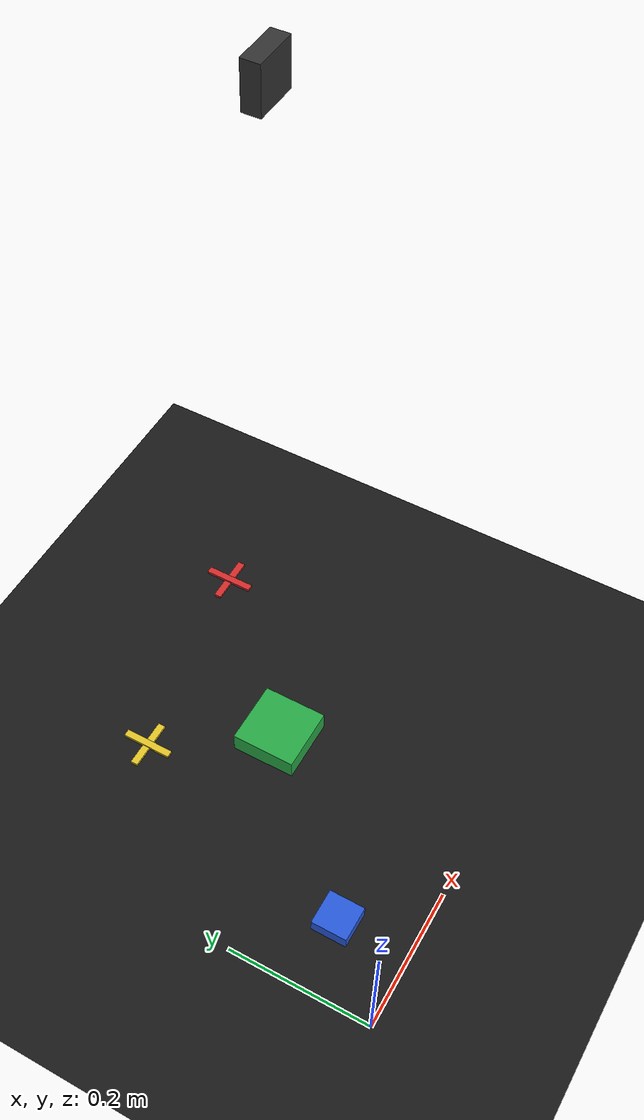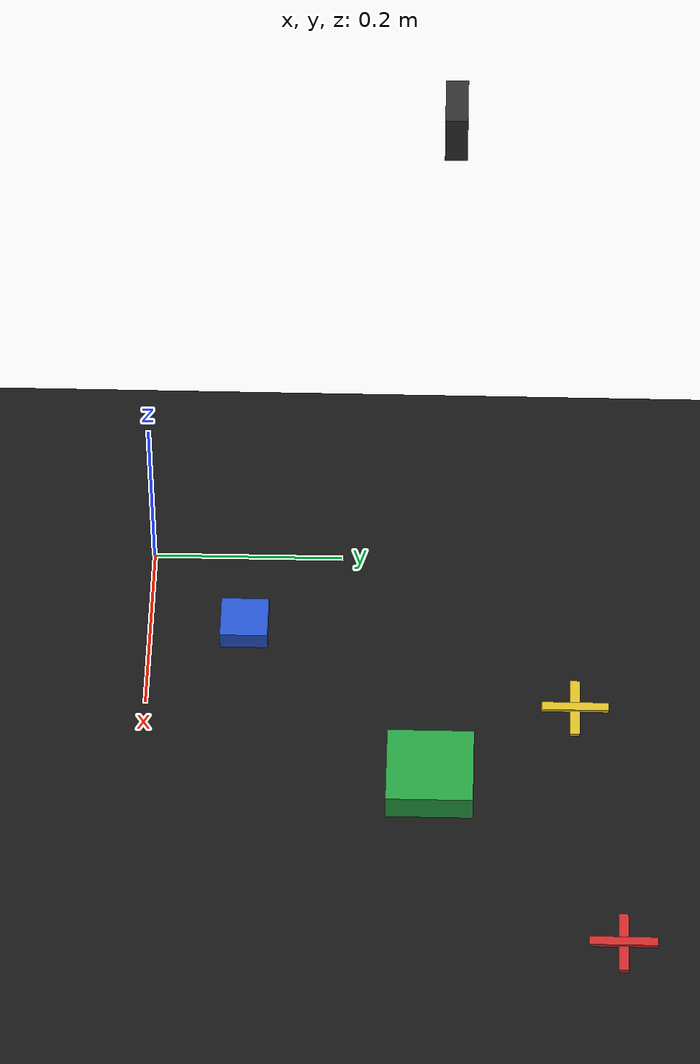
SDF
<?xml version="1.0"?>
<!-- VLA 仿真竞技场（Gazebo Harmonic / gz-sim 8）
     与 mini_vla 合成任务的像素约定对齐：1 像素 = 1 厘米，
     顶视相机视场恰好覆盖 0.64m x 0.64m，图像 col=x、row=y。 -->
<sdf version="1.8">
  <world name="vla_arena">

    <physics name="1ms" type="ode">
      <max_step_size>0.001</max_step_size>
      <real_time_factor>1.0</real_time_factor>
    </physics>

    <plugin filename="gz-sim-physics-system" name="gz::sim::systems::Physics"/>
    <plugin filename="gz-sim-user-commands-system" name="gz::sim::systems::UserCommands"/>
    <plugin filename="gz-sim-scene-broadcaster-system" name="gz::sim::systems::SceneBroadcaster"/>
    <plugin filename="gz-sim-sensors-system" name="gz::sim::systems::Sensors">
      <render_engine>ogre2</render_engine>
    </plugin>

    <scene><ambient>0.5 0.5 0.5 1</ambient><shadows>false</shadows></scene>
    <light name="top" type="directional">
      <pose>0.32 0.32 2 0 0 0</pose>
      <direction>0 0 -1</direction>
      <diffuse>0.25 0.25 0.25 1</diffuse>
      <specular>0 0 0 0</specular>
    </light>

    <!-- 地面：暗灰，对应合成渲染背景灰度 18~36 -->
    <model name="ground">
      <static>true</static>
      <link name="link">
        <collision name="col">
          <geometry><plane><normal>0 0 1</normal><size>10 10</size></plane></geometry>
          <surface><friction><ode><mu>1.0</mu><mu2>1.0</mu2></ode></friction></surface>
        </collision>
        <visual name="vis">
          <geometry><plane><normal>0 0 1</normal><size>10 10</size></plane></geometry>
          <material>
            <ambient>0.10 0.10 0.10 1</ambient><diffuse>0.10 0.10 0.10 1</diffuse>
            <emissive>0.04 0.04 0.04 1</emissive><specular>0 0 0 0</specular>
          </material>
        </visual>
      </link>
    </model>

    <!-- 蓝色智能体（静态模型：位移由 vla_bridge 插件按速度指令积分） -->
    <model name="agent">
      <static>true</static>
      <pose>0.10 0.10 0.011 0 0 0</pose>
      <link name="link">
        <collision name="col">
          <geometry><box><size>0.05 0.05 0.02</size></box></geometry>
        </collision>
        <visual name="vis">
          <geometry><box><size>0.05 0.05 0.02</size></box></geometry>
          <material>
            <ambient>0.157 0.353 0.863 1</ambient><diffuse>0.157 0.353 0.863 1</diffuse>
            <emissive>0.079 0.177 0.431 1</emissive><specular>0 0 0 0</specular>
          </material>
        </visual>
      </link>
    </model>

    <!-- 绿色箱子：push 任务操作对象（运动学模型，接触推动由插件实现，与训练域一致） -->
    <model name="green_box">
      <static>true</static>
      <pose>0.30 0.30 0.016 0 0 0</pose>
      <link name="link">
        <collision name="col">
          <geometry><box><size>0.09 0.09 0.03</size></box></geometry>
          <surface><friction><ode><mu>0.35</mu><mu2>0.35</mu2></ode></friction></surface>
        </collision>
        <visual name="vis">
          <geometry><box><size>0.09 0.09 0.03</size></box></geometry>
          <material>
            <ambient>0.157 0.667 0.275 1</ambient><diffuse>0.157 0.667 0.275 1</diffuse>
            <emissive>0.078 0.333 0.137 1</emissive><specular>0 0 0 0</specular>
          </material>
        </visual>
      </link>
    </model>

    <!-- 红十字（reach 目标）与黄十字（push 目标）：静态视觉标记，位置可由桥接重设 -->
    <model name="red_cross">
      <static>true</static>
      <pose>0.50 0.50 0 0 0 0</pose>
      <link name="h"><pose>0 0 0.002 0 0 0</pose>
        <visual name="v">
          <geometry><box><size>0.07 0.01 0.004</size></box></geometry>
          <material><ambient>0.843 0.176 0.176 1</ambient><diffuse>0.843 0.176 0.176 1</diffuse>
                    <emissive>0.42 0.09 0.09 1</emissive><specular>0 0 0 0</specular></material>
        </visual>
      </link>
      <link name="v"><pose>0 0 0.004 0 0 0</pose>
        <visual name="v">
          <geometry><box><size>0.01 0.07 0.004</size></box></geometry>
          <material><ambient>0.843 0.176 0.176 1</ambient><diffuse>0.843 0.176 0.176 1</diffuse>
                    <emissive>0.42 0.09 0.09 1</emissive><specular>0 0 0 0</specular></material>
        </visual>
      </link>
    </model>

    <model name="yellow_cross">
      <static>true</static>
      <pose>0.20 0.45 0 0 0 0</pose>
      <link name="h"><pose>0 0 0.002 0 0 0</pose>
        <visual name="v">
          <geometry><box><size>0.07 0.01 0.004</size></box></geometry>
          <material><ambient>0.902 0.784 0.157 1</ambient><diffuse>0.902 0.784 0.157 1</diffuse>
                    <emissive>0.45 0.39 0.08 1</emissive><specular>0 0 0 0</specular></material>
        </visual>
      </link>
      <link name="v"><pose>0 0 0.004 0 0 0</pose>
        <visual name="v">
          <geometry><box><size>0.01 0.07 0.004</size></box></geometry>
          <material><ambient>0.902 0.784 0.157 1</ambient><diffuse>0.902 0.784 0.157 1</diffuse>
                    <emissive>0.45 0.39 0.08 1</emissive><specular>0 0 0 0</specular></material>
        </visual>
      </link>
    </model>

    <!-- 虚拟设备 1：顶视相机（策略观测源）—— 视场恰好覆盖 64cm x 64cm -->
    <model name="overhead_cam">
      <static>true</static>
      <pose>0.32 0.32 1.0 0 1.5708 -1.5708</pose>
      <link name="link">
        <visual name="vis">
          <geometry><box><size>0.05 0.05 0.02</size></box></geometry>
          <material><ambient>0.2 0.2 0.2 1</ambient><diffuse>0.2 0.2 0.2 1</diffuse></material>
        </visual>
        <sensor name="cam" type="camera">
          <always_on>1</always_on>
          <update_rate>10</update_rate>
          <visualize>false</visualize>
          <topic>/vla_cam</topic>
          <camera>
            <horizontal_fov>0.6187</horizontal_fov>
            <image><width>64</width><height>64</height><format>R8G8B8</format></image>
            <clip><near>0.05</near><far>5</far></clip>
          </camera>
        </sensor>
      </link>
    </model>

    <!-- 虚拟设备 2：侧视监控相机（人看仿真用，不进策略） -->
    <model name="side_cam">
      <static>true</static>
      <pose>1.2 0.32 0.5 0 0 -1.5708</pose>
      <link name="link">
        <sensor name="side" type="camera">
          <always_on>1</always_on>
          <update_rate>1</update_rate>
          <visualize>false</visualize>
          <topic>/gz_side_cam</topic>
          <camera>
            <horizontal_fov>1.2</horizontal_fov>
            <image><width>160</width><height>120</height><format>R8G8B8</format></image>
            <clip><near>0.05</near><far>10</far></clip>
          </camera>
        </sensor>
      </link>
    </model>

    <!-- VLA 仿真桥：TCP 行协议，见 vla_bridge.cpp -->
    <plugin filename="vla_bridge" name="vla_bridge::VLABridge">
      <port>9101</port>
      <camera_topic>/vla_cam</camera_topic>
    </plugin>
  </world>
</sdf>
